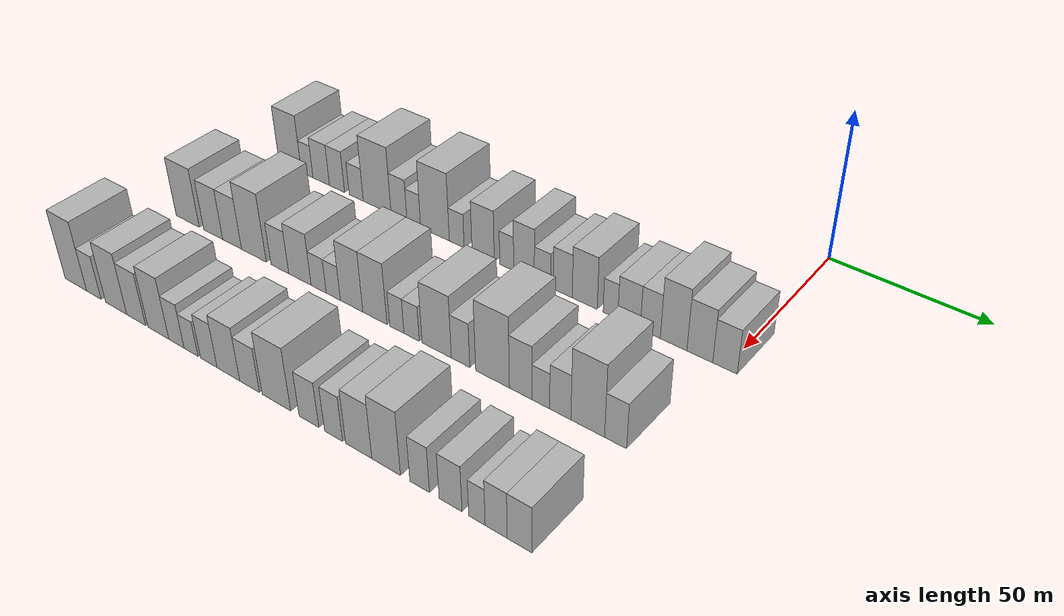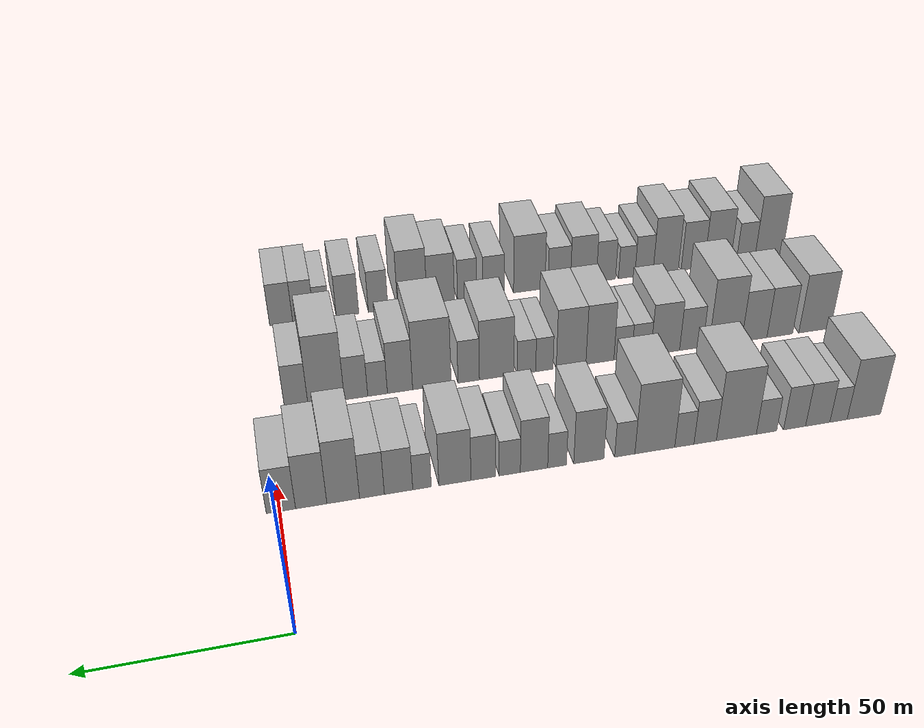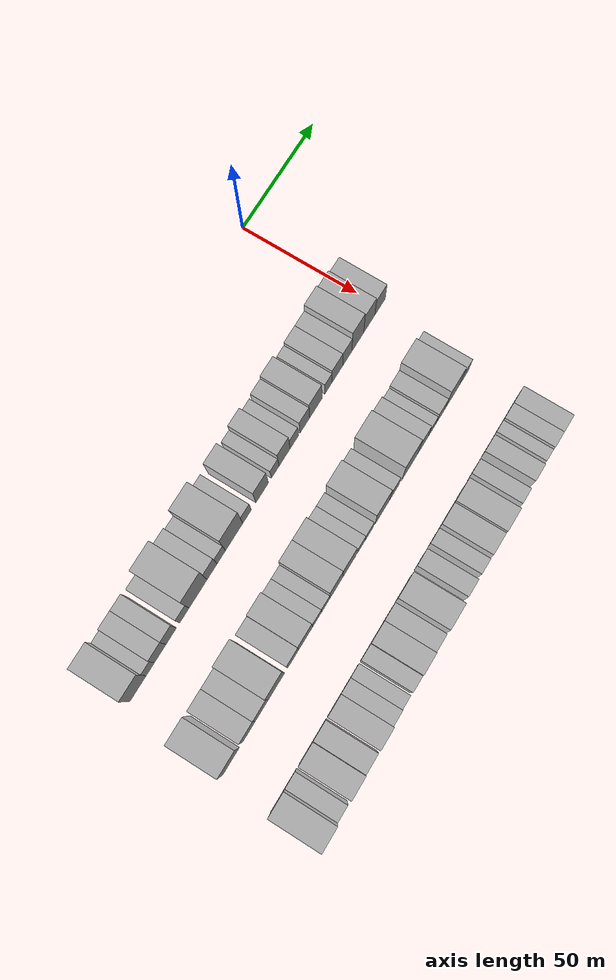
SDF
<sdf version="1.6">
 <world name="default">
  <model name="building_25">
   <static>1</static>
   <pose>50.0000 -161.3190 0 0.000000 0.000000 0.000000</pose>
   <link name="link">
    <pose>0 0 10.50 0 0 0</pose>
    <collision name="collision"><geometry><box><size>20.0000 10.1112 21.0000</size></box></geometry></collision>
    <visual name="visual">
     <cast_shadows>0</cast_shadows>
     <geometry><box><size>20.0000 10.1112 21.0000</size></box></geometry>
     <material>
      <script>
       <uri>model://HANNAS_wall/materials/scripts</uri>
       <uri>model://HANNAS_wall/materials/textures</uri>
       <name>vrc/HANNAS_wall</name>
      </script>
     </material>
    </visual>
   </link>
  </model>
  <model name="building_26">
   <static>1</static>
   <pose>50.0000 -153.6916 0 0.000000 0.000000 0.000000</pose>
   <link name="link">
    <pose>0 0 6.00 0 0 0</pose>
    <collision name="collision"><geometry><box><size>20.0000 5.1437 12.0000</size></box></geometry></collision>
    <visual name="visual">
     <cast_shadows>0</cast_shadows>
     <geometry><box><size>20.0000 5.1437 12.0000</size></box></geometry>
     <material>
      <script>
       <uri>model://HANNAS_wall/materials/scripts</uri>
       <uri>model://HANNAS_wall/materials/textures</uri>
       <name>vrc/HANNAS_wall</name>
      </script>
     </material>
    </visual>
   </link>
  </model>
  <model name="building_27">
   <static>1</static>
   <pose>50.0000 -147.5010 0 0.000000 0.000000 0.000000</pose>
   <link name="link">
    <pose>0 0 7.50 0 0 0</pose>
    <collision name="collision"><geometry><box><size>20.0000 7.2375 15.0000</size></box></geometry></collision>
    <visual name="visual">
     <cast_shadows>0</cast_shadows>
     <geometry><box><size>20.0000 7.2375 15.0000</size></box></geometry>
     <material>
      <script>
       <uri>model://HANNAS_wall/materials/scripts</uri>
       <uri>model://HANNAS_wall/materials/textures</uri>
       <name>vrc/HANNAS_wall</name>
      </script>
     </material>
    </visual>
   </link>
  </model>
  <model name="building_28">
   <static>1</static>
   <pose>50.0000 -140.6211 0 0.000000 0.000000 0.000000</pose>
   <link name="link">
    <pose>0 0 7.50 0 0 0</pose>
    <collision name="collision"><geometry><box><size>20.0000 6.5223 15.0000</size></box></geometry></collision>
    <visual name="visual">
     <cast_shadows>0</cast_shadows>
     <geometry><box><size>20.0000 6.5223 15.0000</size></box></geometry>
     <material>
      <script>
       <uri>model://HANNAS_wall/materials/scripts</uri>
       <uri>model://HANNAS_wall/materials/textures</uri>
       <name>vrc/HANNAS_wall</name>
      </script>
     </material>
    </visual>
   </link>
  </model>
  <model name="building_29">
   <static>1</static>
   <pose>50.0000 -132.3837 0 0.000000 0.000000 0.000000</pose>
   <link name="link">
    <pose>0 0 6.00 0 0 0</pose>
    <collision name="collision"><geometry><box><size>20.0000 5.9525 12.0000</size></box></geometry></collision>
    <visual name="visual">
     <cast_shadows>0</cast_shadows>
     <geometry><box><size>20.0000 5.9525 12.0000</size></box></geometry>
     <material>
      <script>
       <uri>model://HANNAS_wall/materials/scripts</uri>
       <uri>model://HANNAS_wall/materials/textures</uri>
       <name>vrc/HANNAS_wall</name>
      </script>
     </material>
    </visual>
   </link>
  </model>
  <model name="building_30">
   <static>1</static>
   <pose>50.0000 -123.6012 0 0.000000 0.000000 0.000000</pose>
   <link name="link">
    <pose>0 0 12.00 0 0 0</pose>
    <collision name="collision"><geometry><box><size>20.0000 11.6125 24.0000</size></box></geometry></collision>
    <visual name="visual">
     <cast_shadows>0</cast_shadows>
     <geometry><box><size>20.0000 11.6125 24.0000</size></box></geometry>
     <material>
      <script>
       <uri>model://HANNAS_wall/materials/scripts</uri>
       <uri>model://HANNAS_wall/materials/textures</uri>
       <name>vrc/HANNAS_wall</name>
      </script>
     </material>
    </visual>
   </link>
  </model>
  <model name="building_31">
   <static>1</static>
   <pose>50.0000 -114.5825 0 0.000000 0.000000 0.000000</pose>
   <link name="link">
    <pose>0 0 7.50 0 0 0</pose>
    <collision name="collision"><geometry><box><size>20.0000 6.4248 15.0000</size></box></geometry></collision>
    <visual name="visual">
     <cast_shadows>0</cast_shadows>
     <geometry><box><size>20.0000 6.4248 15.0000</size></box></geometry>
     <material>
      <script>
       <uri>model://HANNAS_wall/materials/scripts</uri>
       <uri>model://HANNAS_wall/materials/textures</uri>
       <name>vrc/HANNAS_wall</name>
      </script>
     </material>
    </visual>
   </link>
  </model>
  <model name="building_32">
   <static>1</static>
   <pose>50.0000 -108.6283 0 0.000000 0.000000 0.000000</pose>
   <link name="link">
    <pose>0 0 6.00 0 0 0</pose>
    <collision name="collision"><geometry><box><size>20.0000 5.4836 12.0000</size></box></geometry></collision>
    <visual name="visual">
     <cast_shadows>0</cast_shadows>
     <geometry><box><size>20.0000 5.4836 12.0000</size></box></geometry>
     <material>
      <script>
       <uri>model://HANNAS_wall/materials/scripts</uri>
       <uri>model://HANNAS_wall/materials/textures</uri>
       <name>vrc/HANNAS_wall</name>
      </script>
     </material>
    </visual>
   </link>
  </model>
  <model name="building_33">
   <static>1</static>
   <pose>50.0000 -100.2538 0 0.000000 0.000000 0.000000</pose>
   <link name="link">
    <pose>0 0 12.00 0 0 0</pose>
    <collision name="collision"><geometry><box><size>20.0000 11.2654 24.0000</size></box></geometry></collision>
    <visual name="visual">
     <cast_shadows>0</cast_shadows>
     <geometry><box><size>20.0000 11.2654 24.0000</size></box></geometry>
     <material>
      <script>
       <uri>model://HANNAS_wall/materials/scripts</uri>
       <uri>model://HANNAS_wall/materials/textures</uri>
       <name>vrc/HANNAS_wall</name>
      </script>
     </material>
    </visual>
   </link>
  </model>
  <model name="building_34">
   <static>1</static>
   <pose>50.0000 -91.7787 0 0.000000 0.000000 0.000000</pose>
   <link name="link">
    <pose>0 0 6.00 0 0 0</pose>
    <collision name="collision"><geometry><box><size>20.0000 5.6847 12.0000</size></box></geometry></collision>
    <visual name="visual">
     <cast_shadows>0</cast_shadows>
     <geometry><box><size>20.0000 5.6847 12.0000</size></box></geometry>
     <material>
      <script>
       <uri>model://HANNAS_wall/materials/scripts</uri>
       <uri>model://HANNAS_wall/materials/textures</uri>
       <name>vrc/HANNAS_wall</name>
      </script>
     </material>
    </visual>
   </link>
  </model>
  <model name="building_35">
   <static>1</static>
   <pose>50.0000 -81.7509 0 0.000000 0.000000 0.000000</pose>
   <link name="link">
    <pose>0 0 9.00 0 0 0</pose>
    <collision name="collision"><geometry><box><size>20.0000 8.3708 18.0000</size></box></geometry></collision>
    <visual name="visual">
     <cast_shadows>0</cast_shadows>
     <geometry><box><size>20.0000 8.3708 18.0000</size></box></geometry>
     <material>
      <script>
       <uri>model://HANNAS_wall/materials/scripts</uri>
       <uri>model://HANNAS_wall/materials/textures</uri>
       <name>vrc/HANNAS_wall</name>
      </script>
     </material>
    </visual>
   </link>
  </model>
  <model name="building_36">
   <static>1</static>
   <pose>50.0000 -72.9915 0 0.000000 0.000000 0.000000</pose>
   <link name="link">
    <pose>0 0 6.00 0 0 0</pose>
    <collision name="collision"><geometry><box><size>20.0000 5.1481 12.0000</size></box></geometry></collision>
    <visual name="visual">
     <cast_shadows>0</cast_shadows>
     <geometry><box><size>20.0000 5.1481 12.0000</size></box></geometry>
     <material>
      <script>
       <uri>model://HANNAS_wall/materials/scripts</uri>
       <uri>model://HANNAS_wall/materials/textures</uri>
       <name>vrc/HANNAS_wall</name>
      </script>
     </material>
    </visual>
   </link>
  </model>
  <model name="building_37">
   <static>1</static>
   <pose>50.0000 -66.6965 0 0.000000 0.000000 0.000000</pose>
   <link name="link">
    <pose>0 0 9.00 0 0 0</pose>
    <collision name="collision"><geometry><box><size>20.0000 7.4419 18.0000</size></box></geometry></collision>
    <visual name="visual">
     <cast_shadows>0</cast_shadows>
     <geometry><box><size>20.0000 7.4419 18.0000</size></box></geometry>
     <material>
      <script>
       <uri>model://HANNAS_wall/materials/scripts</uri>
       <uri>model://HANNAS_wall/materials/textures</uri>
       <name>vrc/HANNAS_wall</name>
      </script>
     </material>
    </visual>
   </link>
  </model>
  <model name="building_38">
   <static>1</static>
   <pose>50.0000 -60.1013 0 0.000000 0.000000 0.000000</pose>
   <link name="link">
    <pose>0 0 6.00 0 0 0</pose>
    <collision name="collision"><geometry><box><size>20.0000 5.7485 12.0000</size></box></geometry></collision>
    <visual name="visual">
     <cast_shadows>0</cast_shadows>
     <geometry><box><size>20.0000 5.7485 12.0000</size></box></geometry>
     <material>
      <script>
       <uri>model://HANNAS_wall/materials/scripts</uri>
       <uri>model://HANNAS_wall/materials/textures</uri>
       <name>vrc/HANNAS_wall</name>
      </script>
     </material>
    </visual>
   </link>
  </model>
  <model name="building_39">
   <static>1</static>
   <pose>50.0000 -52.9512 0 0.000000 0.000000 0.000000</pose>
   <link name="link">
    <pose>0 0 7.50 0 0 0</pose>
    <collision name="collision"><geometry><box><size>20.0000 6.5517 15.0000</size></box></geometry></collision>
    <visual name="visual">
     <cast_shadows>0</cast_shadows>
     <geometry><box><size>20.0000 6.5517 15.0000</size></box></geometry>
     <material>
      <script>
       <uri>model://HANNAS_wall/materials/scripts</uri>
       <uri>model://HANNAS_wall/materials/textures</uri>
       <name>vrc/HANNAS_wall</name>
      </script>
     </material>
    </visual>
   </link>
  </model>
  <model name="building_40">
   <static>1</static>
   <pose>50.0000 -45.3979 0 0.000000 0.000000 0.000000</pose>
   <link name="link">
    <pose>0 0 9.00 0 0 0</pose>
    <collision name="collision"><geometry><box><size>20.0000 8.5549 18.0000</size></box></geometry></collision>
    <visual name="visual">
     <cast_shadows>0</cast_shadows>
     <geometry><box><size>20.0000 8.5549 18.0000</size></box></geometry>
     <material>
      <script>
       <uri>model://HANNAS_wall/materials/scripts</uri>
       <uri>model://HANNAS_wall/materials/textures</uri>
       <name>vrc/HANNAS_wall</name>
      </script>
     </material>
    </visual>
   </link>
  </model>
  <model name="building_41">
   <static>1</static>
   <pose>50.0000 -36.6733 0 0.000000 0.000000 0.000000</pose>
   <link name="link">
    <pose>0 0 6.00 0 0 0</pose>
    <collision name="collision"><geometry><box><size>20.0000 4.8943 12.0000</size></box></geometry></collision>
    <visual name="visual">
     <cast_shadows>0</cast_shadows>
     <geometry><box><size>20.0000 4.8943 12.0000</size></box></geometry>
     <material>
      <script>
       <uri>model://HANNAS_wall/materials/scripts</uri>
       <uri>model://HANNAS_wall/materials/textures</uri>
       <name>vrc/HANNAS_wall</name>
      </script>
     </material>
    </visual>
   </link>
  </model>
  <model name="building_42">
   <static>1</static>
   <pose>50.0000 -30.5154 0 0.000000 0.000000 0.000000</pose>
   <link name="link">
    <pose>0 0 7.50 0 0 0</pose>
    <collision name="collision"><geometry><box><size>20.0000 7.4215 15.0000</size></box></geometry></collision>
    <visual name="visual">
     <cast_shadows>0</cast_shadows>
     <geometry><box><size>20.0000 7.4215 15.0000</size></box></geometry>
     <material>
      <script>
       <uri>model://HANNAS_wall/materials/scripts</uri>
       <uri>model://HANNAS_wall/materials/textures</uri>
       <name>vrc/HANNAS_wall</name>
      </script>
     </material>
    </visual>
   </link>
  </model>
  <model name="building_43">
   <static>1</static>
   <pose>50.0000 -23.5866 0 0.000000 0.000000 0.000000</pose>
   <link name="link">
    <pose>0 0 7.50 0 0 0</pose>
    <collision name="collision"><geometry><box><size>20.0000 6.4360 15.0000</size></box></geometry></collision>
    <visual name="visual">
     <cast_shadows>0</cast_shadows>
     <geometry><box><size>20.0000 6.4360 15.0000</size></box></geometry>
     <material>
      <script>
       <uri>model://HANNAS_wall/materials/scripts</uri>
       <uri>model://HANNAS_wall/materials/textures</uri>
       <name>vrc/HANNAS_wall</name>
      </script>
     </material>
    </visual>
   </link>
  </model>
  <model name="building_44">
   <static>1</static>
   <pose>50.0000 -16.1588 0 0.000000 0.000000 0.000000</pose>
   <link name="link">
    <pose>0 0 10.50 0 0 0</pose>
    <collision name="collision"><geometry><box><size>20.0000 8.4197 21.0000</size></box></geometry></collision>
    <visual name="visual">
     <cast_shadows>0</cast_shadows>
     <geometry><box><size>20.0000 8.4197 21.0000</size></box></geometry>
     <material>
      <script>
       <uri>model://HANNAS_wall/materials/scripts</uri>
       <uri>model://HANNAS_wall/materials/textures</uri>
       <name>vrc/HANNAS_wall</name>
      </script>
     </material>
    </visual>
   </link>
  </model>
  <model name="building_45">
   <static>1</static>
   <pose>50.0000 -7.9561 0 0.000000 0.000000 0.000000</pose>
   <link name="link">
    <pose>0 0 9.00 0 0 0</pose>
    <collision name="collision"><geometry><box><size>20.0000 7.9856 18.0000</size></box></geometry></collision>
    <visual name="visual">
     <cast_shadows>0</cast_shadows>
     <geometry><box><size>20.0000 7.9856 18.0000</size></box></geometry>
     <material>
      <script>
       <uri>model://HANNAS_wall/materials/scripts</uri>
       <uri>model://HANNAS_wall/materials/textures</uri>
       <name>vrc/HANNAS_wall</name>
      </script>
     </material>
    </visual>
   </link>
  </model>
  <model name="building_46">
   <static>1</static>
   <pose>50.0000 -0.2505 0 0.000000 0.000000 0.000000</pose>
   <link name="link">
    <pose>0 0 7.50 0 0 0</pose>
    <collision name="collision"><geometry><box><size>20.0000 7.4255 15.0000</size></box></geometry></collision>
    <visual name="visual">
     <cast_shadows>0</cast_shadows>
     <geometry><box><size>20.0000 7.4255 15.0000</size></box></geometry>
     <material>
      <script>
       <uri>model://HANNAS_wall/materials/scripts</uri>
       <uri>model://HANNAS_wall/materials/textures</uri>
       <name>vrc/HANNAS_wall</name>
      </script>
     </material>
    </visual>
   </link>
  </model>
  <model name="building_107">
   <static>1</static>
   <pose>90.0000 -164.8301 0 0.000000 0.000000 0.000000</pose>
   <link name="link">
    <pose>0 0 10.50 0 0 0</pose>
    <collision name="collision"><geometry><box><size>20.0000 10.4008 21.0000</size></box></geometry></collision>
    <visual name="visual">
     <cast_shadows>0</cast_shadows>
     <geometry><box><size>20.0000 10.4008 21.0000</size></box></geometry>
     <material>
      <script>
       <uri>model://HANNAS_wall/materials/scripts</uri>
       <uri>model://HANNAS_wall/materials/textures</uri>
       <name>vrc/HANNAS_wall</name>
      </script>
     </material>
    </visual>
   </link>
  </model>
  <model name="building_108">
   <static>1</static>
   <pose>90.0000 -153.4701 0 0.000000 0.000000 0.000000</pose>
   <link name="link">
    <pose>0 0 9.00 0 0 0</pose>
    <collision name="collision"><geometry><box><size>20.0000 8.3193 18.0000</size></box></geometry></collision>
    <visual name="visual">
     <cast_shadows>0</cast_shadows>
     <geometry><box><size>20.0000 8.3193 18.0000</size></box></geometry>
     <material>
      <script>
       <uri>model://HANNAS_wall/materials/scripts</uri>
       <uri>model://HANNAS_wall/materials/textures</uri>
       <name>vrc/HANNAS_wall</name>
      </script>
     </material>
    </visual>
   </link>
  </model>
  <model name="building_109">
   <static>1</static>
   <pose>90.0000 -145.2546 0 0.000000 0.000000 0.000000</pose>
   <link name="link">
    <pose>0 0 9.00 0 0 0</pose>
    <collision name="collision"><geometry><box><size>20.0000 8.1116 18.0000</size></box></geometry></collision>
    <visual name="visual">
     <cast_shadows>0</cast_shadows>
     <geometry><box><size>20.0000 8.1116 18.0000</size></box></geometry>
     <material>
      <script>
       <uri>model://HANNAS_wall/materials/scripts</uri>
       <uri>model://HANNAS_wall/materials/textures</uri>
       <name>vrc/HANNAS_wall</name>
      </script>
     </material>
    </visual>
   </link>
  </model>
  <model name="building_110">
   <static>1</static>
   <pose>90.0000 -135.9933 0 0.000000 0.000000 0.000000</pose>
   <link name="link">
    <pose>0 0 12.00 0 0 0</pose>
    <collision name="collision"><geometry><box><size>20.0000 10.4109 24.0000</size></box></geometry></collision>
    <visual name="visual">
     <cast_shadows>0</cast_shadows>
     <geometry><box><size>20.0000 10.4109 24.0000</size></box></geometry>
     <material>
      <script>
       <uri>model://HANNAS_wall/materials/scripts</uri>
       <uri>model://HANNAS_wall/materials/textures</uri>
       <name>vrc/HANNAS_wall</name>
      </script>
     </material>
    </visual>
   </link>
  </model>
  <model name="building_111">
   <static>1</static>
   <pose>90.0000 -125.1567 0 0.000000 0.000000 0.000000</pose>
   <link name="link">
    <pose>0 0 7.50 0 0 0</pose>
    <collision name="collision"><geometry><box><size>20.0000 7.2624 15.0000</size></box></geometry></collision>
    <visual name="visual">
     <cast_shadows>0</cast_shadows>
     <geometry><box><size>20.0000 7.2624 15.0000</size></box></geometry>
     <material>
      <script>
       <uri>model://HANNAS_wall/materials/scripts</uri>
       <uri>model://HANNAS_wall/materials/textures</uri>
       <name>vrc/HANNAS_wall</name>
      </script>
     </material>
    </visual>
   </link>
  </model>
  <model name="building_112">
   <static>1</static>
   <pose>90.0000 -117.0297 0 0.000000 0.000000 0.000000</pose>
   <link name="link">
    <pose>0 0 9.00 0 0 0</pose>
    <collision name="collision"><geometry><box><size>20.0000 8.9918 18.0000</size></box></geometry></collision>
    <visual name="visual">
     <cast_shadows>0</cast_shadows>
     <geometry><box><size>20.0000 8.9918 18.0000</size></box></geometry>
     <material>
      <script>
       <uri>model://HANNAS_wall/materials/scripts</uri>
       <uri>model://HANNAS_wall/materials/textures</uri>
       <name>vrc/HANNAS_wall</name>
      </script>
     </material>
    </visual>
   </link>
  </model>
  <model name="building_113">
   <static>1</static>
   <pose>90.0000 -109.5781 0 0.000000 0.000000 0.000000</pose>
   <link name="link">
    <pose>0 0 6.00 0 0 0</pose>
    <collision name="collision"><geometry><box><size>20.0000 5.9113 12.0000</size></box></geometry></collision>
    <visual name="visual">
     <cast_shadows>0</cast_shadows>
     <geometry><box><size>20.0000 5.9113 12.0000</size></box></geometry>
     <material>
      <script>
       <uri>model://HANNAS_wall/materials/scripts</uri>
       <uri>model://HANNAS_wall/materials/textures</uri>
       <name>vrc/HANNAS_wall</name>
      </script>
     </material>
    </visual>
   </link>
  </model>
  <model name="building_114">
   <static>1</static>
   <pose>90.0000 -103.8692 0 0.000000 0.000000 0.000000</pose>
   <link name="link">
    <pose>0 0 6.00 0 0 0</pose>
    <collision name="collision"><geometry><box><size>20.0000 5.5066 12.0000</size></box></geometry></collision>
    <visual name="visual">
     <cast_shadows>0</cast_shadows>
     <geometry><box><size>20.0000 5.5066 12.0000</size></box></geometry>
     <material>
      <script>
       <uri>model://HANNAS_wall/materials/scripts</uri>
       <uri>model://HANNAS_wall/materials/textures</uri>
       <name>vrc/HANNAS_wall</name>
      </script>
     </material>
    </visual>
   </link>
  </model>
  <model name="building_115">
   <static>1</static>
   <pose>90.0000 -96.8379 0 0.000000 0.000000 0.000000</pose>
   <link name="link">
    <pose>0 0 10.50 0 0 0</pose>
    <collision name="collision"><geometry><box><size>20.0000 8.5559 21.0000</size></box></geometry></collision>
    <visual name="visual">
     <cast_shadows>0</cast_shadows>
     <geometry><box><size>20.0000 8.5559 21.0000</size></box></geometry>
     <material>
      <script>
       <uri>model://HANNAS_wall/materials/scripts</uri>
       <uri>model://HANNAS_wall/materials/textures</uri>
       <name>vrc/HANNAS_wall</name>
      </script>
     </material>
    </visual>
   </link>
  </model>
  <model name="building_116">
   <static>1</static>
   <pose>90.0000 -88.0741 0 0.000000 0.000000 0.000000</pose>
   <link name="link">
    <pose>0 0 10.50 0 0 0</pose>
    <collision name="collision"><geometry><box><size>20.0000 8.9719 21.0000</size></box></geometry></collision>
    <visual name="visual">
     <cast_shadows>0</cast_shadows>
     <geometry><box><size>20.0000 8.9719 21.0000</size></box></geometry>
     <material>
      <script>
       <uri>model://HANNAS_wall/materials/scripts</uri>
       <uri>model://HANNAS_wall/materials/textures</uri>
       <name>vrc/HANNAS_wall</name>
      </script>
     </material>
    </visual>
   </link>
  </model>
  <model name="building_117">
   <static>1</static>
   <pose>90.0000 -79.9938 0 0.000000 0.000000 0.000000</pose>
   <link name="link">
    <pose>0 0 6.00 0 0 0</pose>
    <collision name="collision"><geometry><box><size>20.0000 5.1888 12.0000</size></box></geometry></collision>
    <visual name="visual">
     <cast_shadows>0</cast_shadows>
     <geometry><box><size>20.0000 5.1888 12.0000</size></box></geometry>
     <material>
      <script>
       <uri>model://HANNAS_wall/materials/scripts</uri>
       <uri>model://HANNAS_wall/materials/textures</uri>
       <name>vrc/HANNAS_wall</name>
      </script>
     </material>
    </visual>
   </link>
  </model>
  <model name="building_118">
   <static>1</static>
   <pose>90.0000 -74.6454 0 0.000000 0.000000 0.000000</pose>
   <link name="link">
    <pose>0 0 6.00 0 0 0</pose>
    <collision name="collision"><geometry><box><size>20.0000 5.5079 12.0000</size></box></geometry></collision>
    <visual name="visual">
     <cast_shadows>0</cast_shadows>
     <geometry><box><size>20.0000 5.5079 12.0000</size></box></geometry>
     <material>
      <script>
       <uri>model://HANNAS_wall/materials/scripts</uri>
       <uri>model://HANNAS_wall/materials/textures</uri>
       <name>vrc/HANNAS_wall</name>
      </script>
     </material>
    </visual>
   </link>
  </model>
  <model name="building_119">
   <static>1</static>
   <pose>90.0000 -65.7696 0 0.000000 0.000000 0.000000</pose>
   <link name="link">
    <pose>0 0 10.50 0 0 0</pose>
    <collision name="collision"><geometry><box><size>20.0000 10.2439 21.0000</size></box></geometry></collision>
    <visual name="visual">
     <cast_shadows>0</cast_shadows>
     <geometry><box><size>20.0000 10.2439 21.0000</size></box></geometry>
     <material>
      <script>
       <uri>model://HANNAS_wall/materials/scripts</uri>
       <uri>model://HANNAS_wall/materials/textures</uri>
       <name>vrc/HANNAS_wall</name>
      </script>
     </material>
    </visual>
   </link>
  </model>
  <model name="building_120">
   <static>1</static>
   <pose>90.0000 -57.4977 0 0.000000 0.000000 0.000000</pose>
   <link name="link">
    <pose>0 0 7.50 0 0 0</pose>
    <collision name="collision"><geometry><box><size>20.0000 6.3000 15.0000</size></box></geometry></collision>
    <visual name="visual">
     <cast_shadows>0</cast_shadows>
     <geometry><box><size>20.0000 6.3000 15.0000</size></box></geometry>
     <material>
      <script>
       <uri>model://HANNAS_wall/materials/scripts</uri>
       <uri>model://HANNAS_wall/materials/textures</uri>
       <name>vrc/HANNAS_wall</name>
      </script>
     </material>
    </visual>
   </link>
  </model>
  <model name="building_121">
   <static>1</static>
   <pose>90.0000 -46.7446 0 0.000000 0.000000 0.000000</pose>
   <link name="link">
    <pose>0 0 12.00 0 0 0</pose>
    <collision name="collision"><geometry><box><size>20.0000 11.2063 24.0000</size></box></geometry></collision>
    <visual name="visual">
     <cast_shadows>0</cast_shadows>
     <geometry><box><size>20.0000 11.2063 24.0000</size></box></geometry>
     <material>
      <script>
       <uri>model://HANNAS_wall/materials/scripts</uri>
       <uri>model://HANNAS_wall/materials/textures</uri>
       <name>vrc/HANNAS_wall</name>
      </script>
     </material>
    </visual>
   </link>
  </model>
  <model name="building_122">
   <static>1</static>
   <pose>90.0000 -37.5033 0 0.000000 0.000000 0.000000</pose>
   <link name="link">
    <pose>0 0 9.00 0 0 0</pose>
    <collision name="collision"><geometry><box><size>20.0000 7.2763 18.0000</size></box></geometry></collision>
    <visual name="visual">
     <cast_shadows>0</cast_shadows>
     <geometry><box><size>20.0000 7.2763 18.0000</size></box></geometry>
     <material>
      <script>
       <uri>model://HANNAS_wall/materials/scripts</uri>
       <uri>model://HANNAS_wall/materials/textures</uri>
       <name>vrc/HANNAS_wall</name>
      </script>
     </material>
    </visual>
   </link>
  </model>
  <model name="building_123">
   <static>1</static>
   <pose>90.0000 -31.0498 0 0.000000 0.000000 0.000000</pose>
   <link name="link">
    <pose>0 0 6.00 0 0 0</pose>
    <collision name="collision"><geometry><box><size>20.0000 5.6307 12.0000</size></box></geometry></collision>
    <visual name="visual">
     <cast_shadows>0</cast_shadows>
     <geometry><box><size>20.0000 5.6307 12.0000</size></box></geometry>
     <material>
      <script>
       <uri>model://HANNAS_wall/materials/scripts</uri>
       <uri>model://HANNAS_wall/materials/textures</uri>
       <name>vrc/HANNAS_wall</name>
      </script>
     </material>
    </visual>
   </link>
  </model>
  <model name="building_124">
   <static>1</static>
   <pose>90.0000 -24.9154 0 0.000000 0.000000 0.000000</pose>
   <link name="link">
    <pose>0 0 7.50 0 0 0</pose>
    <collision name="collision"><geometry><box><size>20.0000 6.6381 15.0000</size></box></geometry></collision>
    <visual name="visual">
     <cast_shadows>0</cast_shadows>
     <geometry><box><size>20.0000 6.6381 15.0000</size></box></geometry>
     <material>
      <script>
       <uri>model://HANNAS_wall/materials/scripts</uri>
       <uri>model://HANNAS_wall/materials/textures</uri>
       <name>vrc/HANNAS_wall</name>
      </script>
     </material>
    </visual>
   </link>
  </model>
  <model name="building_125">
   <static>1</static>
   <pose>90.0000 -16.4573 0 0.000000 0.000000 0.000000</pose>
   <link name="link">
    <pose>0 0 12.00 0 0 0</pose>
    <collision name="collision"><geometry><box><size>20.0000 10.2783 24.0000</size></box></geometry></collision>
    <visual name="visual">
     <cast_shadows>0</cast_shadows>
     <geometry><box><size>20.0000 10.2783 24.0000</size></box></geometry>
     <material>
      <script>
       <uri>model://HANNAS_wall/materials/scripts</uri>
       <uri>model://HANNAS_wall/materials/textures</uri>
       <name>vrc/HANNAS_wall</name>
      </script>
     </material>
    </visual>
   </link>
  </model>
  <model name="building_126">
   <static>1</static>
   <pose>90.0000 -8.0395 0 0.000000 0.000000 0.000000</pose>
   <link name="link">
    <pose>0 0 7.50 0 0 0</pose>
    <collision name="collision"><geometry><box><size>20.0000 6.5573 15.0000</size></box></geometry></collision>
    <visual name="visual">
     <cast_shadows>0</cast_shadows>
     <geometry><box><size>20.0000 6.5573 15.0000</size></box></geometry>
     <material>
      <script>
       <uri>model://HANNAS_wall/materials/scripts</uri>
       <uri>model://HANNAS_wall/materials/textures</uri>
       <name>vrc/HANNAS_wall</name>
      </script>
     </material>
    </visual>
   </link>
  </model>
  <model name="building_185">
   <static>1</static>
   <pose>130.0000 -166.5810 0 0.000000 0.000000 0.000000</pose>
   <link name="link">
    <pose>0 0 12.00 0 0 0</pose>
    <collision name="collision"><geometry><box><size>20.0000 9.6463 24.0000</size></box></geometry></collision>
    <visual name="visual">
     <cast_shadows>0</cast_shadows>
     <geometry><box><size>20.0000 9.6463 24.0000</size></box></geometry>
     <material>
      <script>
       <uri>model://HANNAS_wall/materials/scripts</uri>
       <uri>model://HANNAS_wall/materials/textures</uri>
       <name>vrc/HANNAS_wall</name>
      </script>
     </material>
    </visual>
   </link>
  </model>
  <model name="building_186">
   <static>1</static>
   <pose>130.0000 -158.5587 0 0.000000 0.000000 0.000000</pose>
   <link name="link">
    <pose>0 0 7.50 0 0 0</pose>
    <collision name="collision"><geometry><box><size>20.0000 6.3983 15.0000</size></box></geometry></collision>
    <visual name="visual">
     <cast_shadows>0</cast_shadows>
     <geometry><box><size>20.0000 6.3983 15.0000</size></box></geometry>
     <material>
      <script>
       <uri>model://HANNAS_wall/materials/scripts</uri>
       <uri>model://HANNAS_wall/materials/textures</uri>
       <name>vrc/HANNAS_wall</name>
      </script>
     </material>
    </visual>
   </link>
  </model>
  <model name="building_187">
   <static>1</static>
   <pose>130.0000 -148.8156 0 0.000000 0.000000 0.000000</pose>
   <link name="link">
    <pose>0 0 10.50 0 0 0</pose>
    <collision name="collision"><geometry><box><size>20.0000 9.0879 21.0000</size></box></geometry></collision>
    <visual name="visual">
     <cast_shadows>0</cast_shadows>
     <geometry><box><size>20.0000 9.0879 21.0000</size></box></geometry>
     <material>
      <script>
       <uri>model://HANNAS_wall/materials/scripts</uri>
       <uri>model://HANNAS_wall/materials/textures</uri>
       <name>vrc/HANNAS_wall</name>
      </script>
     </material>
    </visual>
   </link>
  </model>
  <model name="building_188">
   <static>1</static>
   <pose>130.0000 -140.3023 0 0.000000 0.000000 0.000000</pose>
   <link name="link">
    <pose>0 0 9.00 0 0 0</pose>
    <collision name="collision"><geometry><box><size>20.0000 7.9388 18.0000</size></box></geometry></collision>
    <visual name="visual">
     <cast_shadows>0</cast_shadows>
     <geometry><box><size>20.0000 7.9388 18.0000</size></box></geometry>
     <material>
      <script>
       <uri>model://HANNAS_wall/materials/scripts</uri>
       <uri>model://HANNAS_wall/materials/textures</uri>
       <name>vrc/HANNAS_wall</name>
      </script>
     </material>
    </visual>
   </link>
  </model>
  <model name="building_189">
   <static>1</static>
   <pose>130.0000 -131.0326 0 0.000000 0.000000 0.000000</pose>
   <link name="link">
    <pose>0 0 10.50 0 0 0</pose>
    <collision name="collision"><geometry><box><size>20.0000 8.6005 21.0000</size></box></geometry></collision>
    <visual name="visual">
     <cast_shadows>0</cast_shadows>
     <geometry><box><size>20.0000 8.6005 21.0000</size></box></geometry>
     <material>
      <script>
       <uri>model://HANNAS_wall/materials/scripts</uri>
       <uri>model://HANNAS_wall/materials/textures</uri>
       <name>vrc/HANNAS_wall</name>
      </script>
     </material>
    </visual>
   </link>
  </model>
  <model name="building_190">
   <static>1</static>
   <pose>130.0000 -123.6620 0 0.000000 0.000000 0.000000</pose>
   <link name="link">
    <pose>0 0 7.50 0 0 0</pose>
    <collision name="collision"><geometry><box><size>20.0000 6.1407 15.0000</size></box></geometry></collision>
    <visual name="visual">
     <cast_shadows>0</cast_shadows>
     <geometry><box><size>20.0000 6.1407 15.0000</size></box></geometry>
     <material>
      <script>
       <uri>model://HANNAS_wall/materials/scripts</uri>
       <uri>model://HANNAS_wall/materials/textures</uri>
       <name>vrc/HANNAS_wall</name>
      </script>
     </material>
    </visual>
   </link>
  </model>
  <model name="building_191">
   <static>1</static>
   <pose>130.0000 -117.8374 0 0.000000 0.000000 0.000000</pose>
   <link name="link">
    <pose>0 0 6.00 0 0 0</pose>
    <collision name="collision"><geometry><box><size>20.0000 5.5084 12.0000</size></box></geometry></collision>
    <visual name="visual">
     <cast_shadows>0</cast_shadows>
     <geometry><box><size>20.0000 5.5084 12.0000</size></box></geometry>
     <material>
      <script>
       <uri>model://HANNAS_wall/materials/scripts</uri>
       <uri>model://HANNAS_wall/materials/textures</uri>
       <name>vrc/HANNAS_wall</name>
      </script>
     </material>
    </visual>
   </link>
  </model>
  <model name="building_192">
   <static>1</static>
   <pose>130.0000 -110.8728 0 0.000000 0.000000 0.000000</pose>
   <link name="link">
    <pose>0 0 7.50 0 0 0</pose>
    <collision name="collision"><geometry><box><size>20.0000 6.4208 15.0000</size></box></geometry></collision>
    <visual name="visual">
     <cast_shadows>0</cast_shadows>
     <geometry><box><size>20.0000 6.4208 15.0000</size></box></geometry>
     <material>
      <script>
       <uri>model://HANNAS_wall/materials/scripts</uri>
       <uri>model://HANNAS_wall/materials/textures</uri>
       <name>vrc/HANNAS_wall</name>
      </script>
     </material>
    </visual>
   </link>
  </model>
  <model name="building_193">
   <static>1</static>
   <pose>130.0000 -103.3431 0 0.000000 0.000000 0.000000</pose>
   <link name="link">
    <pose>0 0 9.00 0 0 0</pose>
    <collision name="collision"><geometry><box><size>20.0000 8.6386 18.0000</size></box></geometry></collision>
    <visual name="visual">
     <cast_shadows>0</cast_shadows>
     <geometry><box><size>20.0000 8.6386 18.0000</size></box></geometry>
     <material>
      <script>
       <uri>model://HANNAS_wall/materials/scripts</uri>
       <uri>model://HANNAS_wall/materials/textures</uri>
       <name>vrc/HANNAS_wall</name>
      </script>
     </material>
    </visual>
   </link>
  </model>
  <model name="building_194">
   <static>1</static>
   <pose>130.0000 -95.3615 0 0.000000 0.000000 0.000000</pose>
   <link name="link">
    <pose>0 0 7.50 0 0 0</pose>
    <collision name="collision"><geometry><box><size>20.0000 7.3246 15.0000</size></box></geometry></collision>
    <visual name="visual">
     <cast_shadows>0</cast_shadows>
     <geometry><box><size>20.0000 7.3246 15.0000</size></box></geometry>
     <material>
      <script>
       <uri>model://HANNAS_wall/materials/scripts</uri>
       <uri>model://HANNAS_wall/materials/textures</uri>
       <name>vrc/HANNAS_wall</name>
      </script>
     </material>
    </visual>
   </link>
  </model>
  <model name="building_195">
   <static>1</static>
   <pose>130.0000 -85.5505 0 0.000000 0.000000 0.000000</pose>
   <link name="link">
    <pose>0 0 10.50 0 0 0</pose>
    <collision name="collision"><geometry><box><size>20.0000 10.2974 21.0000</size></box></geometry></collision>
    <visual name="visual">
     <cast_shadows>0</cast_shadows>
     <geometry><box><size>20.0000 10.2974 21.0000</size></box></geometry>
     <material>
      <script>
       <uri>model://HANNAS_wall/materials/scripts</uri>
       <uri>model://HANNAS_wall/materials/textures</uri>
       <name>vrc/HANNAS_wall</name>
      </script>
     </material>
    </visual>
   </link>
  </model>
  <model name="building_196">
   <static>1</static>
   <pose>130.0000 -73.9490 0 0.000000 0.000000 0.000000</pose>
   <link name="link">
    <pose>0 0 7.50 0 0 0</pose>
    <collision name="collision"><geometry><box><size>20.0000 6.9055 15.0000</size></box></geometry></collision>
    <visual name="visual">
     <cast_shadows>0</cast_shadows>
     <geometry><box><size>20.0000 6.9055 15.0000</size></box></geometry>
     <material>
      <script>
       <uri>model://HANNAS_wall/materials/scripts</uri>
       <uri>model://HANNAS_wall/materials/textures</uri>
       <name>vrc/HANNAS_wall</name>
      </script>
     </material>
    </visual>
   </link>
  </model>
  <model name="building_197">
   <static>1</static>
   <pose>130.0000 -65.4209 0 0.000000 0.000000 0.000000</pose>
   <link name="link">
    <pose>0 0 7.50 0 0 0</pose>
    <collision name="collision"><geometry><box><size>20.0000 6.1509 15.0000</size></box></geometry></collision>
    <visual name="visual">
     <cast_shadows>0</cast_shadows>
     <geometry><box><size>20.0000 6.1509 15.0000</size></box></geometry>
     <material>
      <script>
       <uri>model://HANNAS_wall/materials/scripts</uri>
       <uri>model://HANNAS_wall/materials/textures</uri>
       <name>vrc/HANNAS_wall</name>
      </script>
     </material>
    </visual>
   </link>
  </model>
  <model name="building_198">
   <static>1</static>
   <pose>130.0000 -56.9723 0 0.000000 0.000000 0.000000</pose>
   <link name="link">
    <pose>0 0 9.00 0 0 0</pose>
    <collision name="collision"><geometry><box><size>20.0000 8.7462 18.0000</size></box></geometry></collision>
    <visual name="visual">
     <cast_shadows>0</cast_shadows>
     <geometry><box><size>20.0000 8.7462 18.0000</size></box></geometry>
     <material>
      <script>
       <uri>model://HANNAS_wall/materials/scripts</uri>
       <uri>model://HANNAS_wall/materials/textures</uri>
       <name>vrc/HANNAS_wall</name>
      </script>
     </material>
    </visual>
   </link>
  </model>
  <model name="building_199">
   <static>1</static>
   <pose>130.0000 -47.9640 0 0.000000 0.000000 0.000000</pose>
   <link name="link">
    <pose>0 0 10.50 0 0 0</pose>
    <collision name="collision"><geometry><box><size>20.0000 9.2704 21.0000</size></box></geometry></collision>
    <visual name="visual">
     <cast_shadows>0</cast_shadows>
     <geometry><box><size>20.0000 9.2704 21.0000</size></box></geometry>
     <material>
      <script>
       <uri>model://HANNAS_wall/materials/scripts</uri>
       <uri>model://HANNAS_wall/materials/textures</uri>
       <name>vrc/HANNAS_wall</name>
      </script>
     </material>
    </visual>
   </link>
  </model>
  <model name="building_200">
   <static>1</static>
   <pose>130.0000 -37.2615 0 0.000000 0.000000 0.000000</pose>
   <link name="link">
    <pose>0 0 7.50 0 0 0</pose>
    <collision name="collision"><geometry><box><size>20.0000 6.1345 15.0000</size></box></geometry></collision>
    <visual name="visual">
     <cast_shadows>0</cast_shadows>
     <geometry><box><size>20.0000 6.1345 15.0000</size></box></geometry>
     <material>
      <script>
       <uri>model://HANNAS_wall/materials/scripts</uri>
       <uri>model://HANNAS_wall/materials/textures</uri>
       <name>vrc/HANNAS_wall</name>
      </script>
     </material>
    </visual>
   </link>
  </model>
  <model name="building_201">
   <static>1</static>
   <pose>130.0000 -27.7059 0 0.000000 0.000000 0.000000</pose>
   <link name="link">
    <pose>0 0 7.50 0 0 0</pose>
    <collision name="collision"><geometry><box><size>20.0000 6.9766 15.0000</size></box></geometry></collision>
    <visual name="visual">
     <cast_shadows>0</cast_shadows>
     <geometry><box><size>20.0000 6.9766 15.0000</size></box></geometry>
     <material>
      <script>
       <uri>model://HANNAS_wall/materials/scripts</uri>
       <uri>model://HANNAS_wall/materials/textures</uri>
       <name>vrc/HANNAS_wall</name>
      </script>
     </material>
    </visual>
   </link>
  </model>
  <model name="building_202">
   <static>1</static>
   <pose>130.0000 -19.7830 0 0.000000 0.000000 0.000000</pose>
   <link name="link">
    <pose>0 0 6.00 0 0 0</pose>
    <collision name="collision"><geometry><box><size>20.0000 4.8692 12.0000</size></box></geometry></collision>
    <visual name="visual">
     <cast_shadows>0</cast_shadows>
     <geometry><box><size>20.0000 4.8692 12.0000</size></box></geometry>
     <material>
      <script>
       <uri>model://HANNAS_wall/materials/scripts</uri>
       <uri>model://HANNAS_wall/materials/textures</uri>
       <name>vrc/HANNAS_wall</name>
      </script>
     </material>
    </visual>
   </link>
  </model>
  <model name="building_203">
   <static>1</static>
   <pose>130.0000 -14.1131 0 0.000000 0.000000 0.000000</pose>
   <link name="link">
    <pose>0 0 7.50 0 0 0</pose>
    <collision name="collision"><geometry><box><size>20.0000 6.4707 15.0000</size></box></geometry></collision>
    <visual name="visual">
     <cast_shadows>0</cast_shadows>
     <geometry><box><size>20.0000 6.4707 15.0000</size></box></geometry>
     <material>
      <script>
       <uri>model://HANNAS_wall/materials/scripts</uri>
       <uri>model://HANNAS_wall/materials/textures</uri>
       <name>vrc/HANNAS_wall</name>
      </script>
     </material>
    </visual>
   </link>
  </model>
  <model name="building_204">
   <static>1</static>
   <pose>130.0000 -7.3641 0 0.000000 0.000000 0.000000</pose>
   <link name="link">
    <pose>0 0 7.50 0 0 0</pose>
    <collision name="collision"><geometry><box><size>20.0000 7.0272 15.0000</size></box></geometry></collision>
    <visual name="visual">
     <cast_shadows>0</cast_shadows>
     <geometry><box><size>20.0000 7.0272 15.0000</size></box></geometry>
     <material>
      <script>
       <uri>model://HANNAS_wall/materials/scripts</uri>
       <uri>model://HANNAS_wall/materials/textures</uri>
       <name>vrc/HANNAS_wall</name>
      </script>
     </material>
    </visual>
   </link>
  </model>
 </world>
</sdf>
